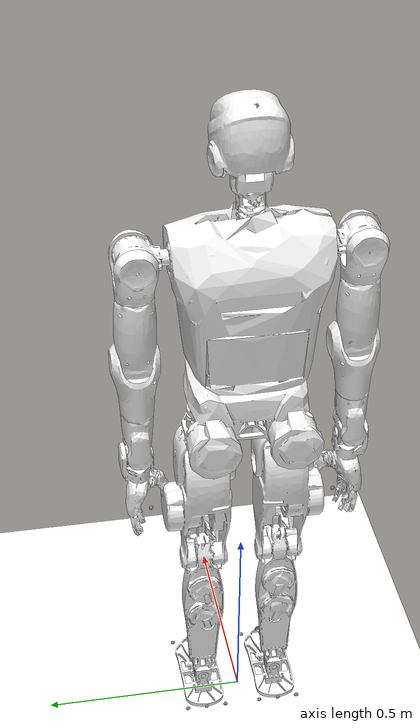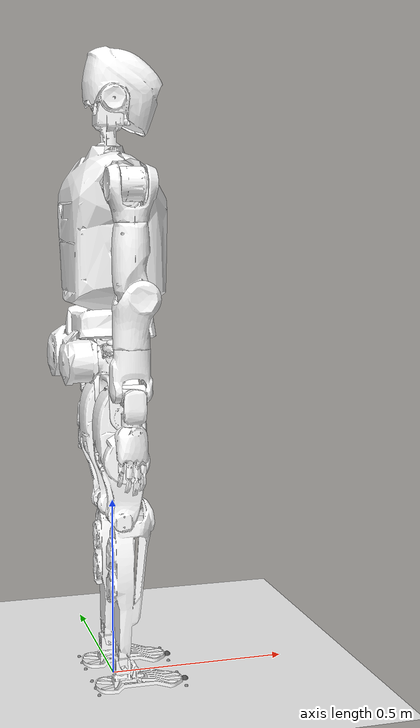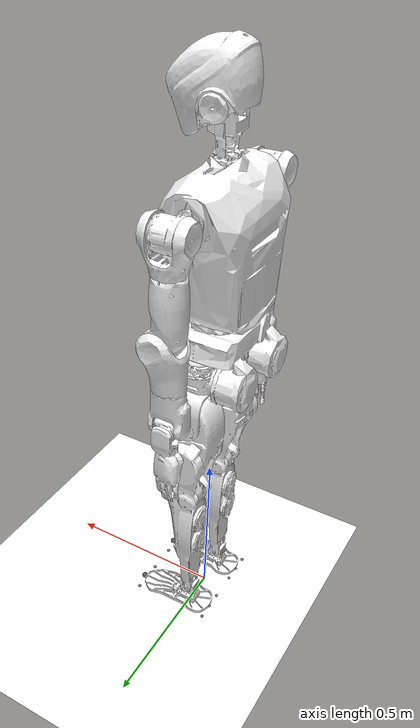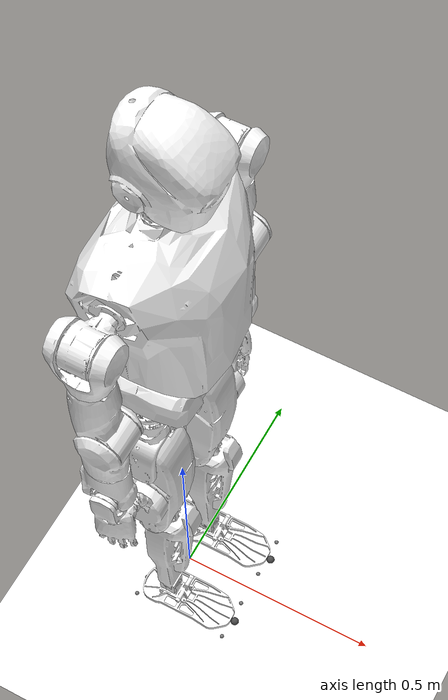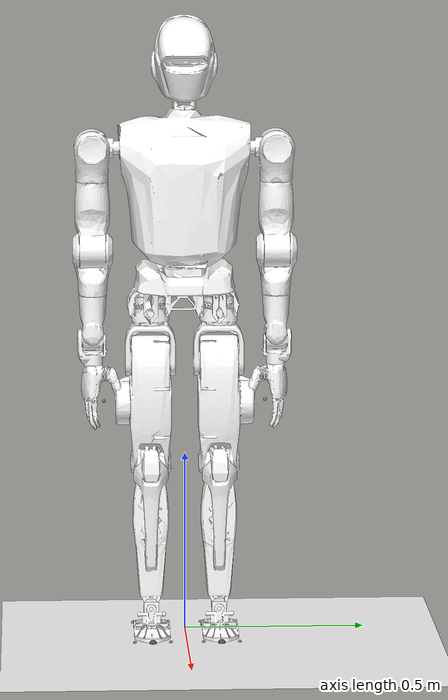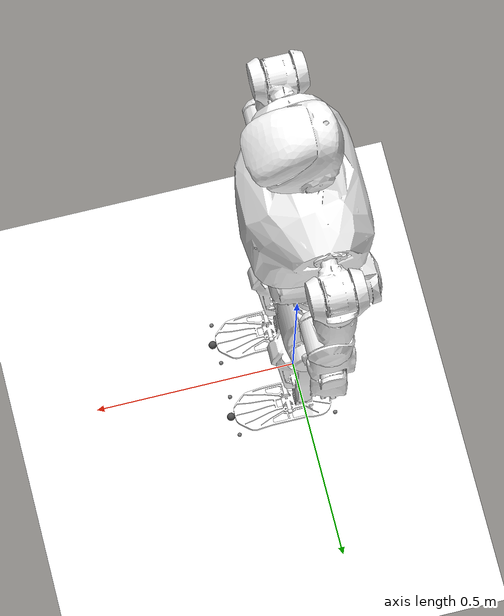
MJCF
<?xml version='1.0' encoding='utf-8'?>
<mujoco model="biped_s52">
  <compiler angle="radian" meshdir="meshes/"/>
  <size njmax="500" nconmax="100" />
  <visual>
    <headlight diffuse="0.6 0.6 0.6" ambient="0.1 0.1 0.1" specular="0.9 0.9 0.9"/>
    <rgba haze="0.15 0.25 0.35 1"/>
    <global azimuth="-140" elevation="-20" offwidth="2080" offheight="1170"/>
  </visual>
  <default>
    <joint limited="true" armature="0.05" damping="0.2" frictionloss="0.02"/>
    <motor ctrllimited="true" ctrlrange="-100 100"/>
    <equality solref="0.005 1"/>
    <default class="collision">
      <!-- User parameter for geoms is used to identify collision types -->
      <geom material="collision" contype="4" conaffinity="4" user="2" rgba="0.9 0.3 0.3 0.2"/>
      <default class="collision-left">
        <geom contype="1" conaffinity="2" rgba="0.3 0.9 0.3 0.2"/>
      </default>
      <default class="collision-right">
        <geom contype="2" conaffinity="1" rgba="0.3 0.3 0.9 0.2"/>
      </default>
    </default>
  </default>
  <asset>
    <!-- background & ground (same style as unitree_g1) -->
    <texture type="skybox" builtin="gradient" rgb1="1 1 1" rgb2="1 1 1" width="800" height="800"/>
    <texture type="2d" name="groundplane" builtin="checker" mark="edge" rgb1="1 1 1" rgb2="1 1 1" markrgb="0 0 0"
      width="300" height="300"/>
    <material name="groundplane" texture="groundplane" texuniform="true" texrepeat="5 5" reflectance="0"/>
    <texture type="skybox" builtin="gradient" rgb1=".4 .5 .6" rgb2="0 0 0" width="100" height="100"/>
    <texture builtin="flat" height="1278" mark="cross" markrgb="1 1 1" name="texgeom" random="0.01"
             rgb1="0.8 0.6 0.4" rgb2="0.8 0.6 0.4" type="cube" width="127"/>
    <texture name="texplane" builtin="checker" height="512" width="512" rgb1=".2 .3 .4" rgb2=".1 .15 .2" type="2d" />
    <material name="MatPlane" reflectance="0.5" shininess="0.01" specular="0.1" texrepeat="1 1"
              texture="texplane" texuniform="true" />

    <!-- keep original grid material if needed elsewhere -->
    <texture name="grid" type="2d" builtin="checker" rgb1=".1 .2 .3" rgb2=".2 .3 .4" width="300" height="300"/>
    <material name="grid" texture="grid" texrepeat="8 8" reflectance=".1"/>
    <material name="collision" rgba="0.1 0.5 0.9 0"/>
    <mesh name="torso" file="torso.STL"/>
    <mesh name="waist_yaw" file="waist_yaw.STL"/>
    <mesh name="l_leg_roll" file="l_leg_roll.STL"/>
    <mesh name="l_leg_yaw" file="l_leg_yaw.STL"/>
    <mesh name="l_leg_pitch" file="l_leg_pitch.STL"/>
    <mesh name="l_knee" file="l_knee.STL"/>
    <mesh name="l_foot_pitch" file="l_foot_pitch.STL"/>
    <mesh name="l_foot_roll" file="l_foot_roll.STL"/>
    <mesh name="r_leg_roll" file="r_leg_roll.STL"/>
    <mesh name="r_leg_yaw" file="r_leg_yaw.STL"/>
    <mesh name="r_leg_pitch" file="r_leg_pitch.STL"/>
    <mesh name="r_knee" file="r_knee.STL"/>
    <mesh name="r_foot_pitch" file="r_foot_pitch.STL"/>
    <mesh name="r_foot_roll" file="r_foot_roll.STL"/>
    <mesh name="l_arm_pitch" file="l_arm_pitch.STL"/>
    <mesh name="l_arm_roll" file="l_arm_roll.STL"/>
    <mesh name="l_arm_yaw" file="l_arm_yaw.STL"/>
    <mesh name="l_forearm" file="l_forearm.STL"/>
    <mesh name="l_hand_yaw" file="l_hand_yaw.STL"/>
    <mesh name="l_hand_roll" file="l_hand_roll.STL"/>
    <mesh name="l_hand_pitch" file="l_hand_pitch.STL"/>
    <mesh name="r_arm_pitch" file="r_arm_pitch.STL"/>
    <mesh name="r_arm_roll" file="r_arm_roll.STL"/>
    <mesh name="r_arm_yaw" file="r_arm_yaw.STL"/>
    <mesh name="r_forearm" file="r_forearm.STL"/>
    <mesh name="r_hand_yaw" file="r_hand_yaw.STL"/>
    <mesh name="r_hand_roll" file="r_hand_roll.STL"/>
    <mesh name="r_hand_pitch" file="r_hand_pitch.STL"/>
    <mesh name="head_yaw" file="head_yaw.STL"/>
    <mesh name="head_pitch" file="head_pitch.STL"/>
    <mesh name="head_camera" file="head_camera.STL"/>
  </asset>
  <worldbody>
    <!-- ground plane & light, same as unitree_g1 -->
    <geom name="floor" size="0 0 0.01" type="plane" material="groundplane" contype="1" conaffinity="0" priority="1"
          friction="0.6" condim="3"/>
    <light diffuse=".5 .5 .5" pos="-3 -3 5" dir="3 3 -5" castshadow="true"/>

    <body name="base_link" pos="0 0 0.968">
      <freejoint />
      <body name="site_left_shoulder" pos="-0.01 0.06 0.47" />
      <body name="site_right_shoulder" pos="-0.01 -0.06 0.47" />
      <body name="site_hips" pos="0.0 0.0 -0.04" />
      <site name="imu" pos="0 0 0" />
      <inertial pos="-0.0505121 1.42e-06 -0.01249" quat="0.658203 0.656028 0.26182 -0.260473" mass="6.53484" diaginertia="0.0840256 0.0507959 0.0496655"/>
      <geom type="mesh" contype="0" conaffinity="0" group="1" density="0" rgba="1 1 1 1" mesh="torso"/>
      <body name="leg_l1_link" pos="0 0.095075 -0.066">
        <inertial pos="-0.00558741 0.0001005 0.00069219" quat="0.0477337 0.697363 0.0616368 0.712466" mass="1.63859" diaginertia="0.00221408 0.00214492 0.00162067"/>
        <joint name="leg_l1_joint" pos="0 0 0" axis="1 0 0" range="-0.314159 0.663225" actuatorfrcrange="-180 180" damping="0.2"/>
        <geom type="mesh" contype="0" conaffinity="0" group="1" density="0" rgba="1 1 1 1" mesh="l_leg_roll"/>
        <body name="leg_l2_link">
          <inertial pos="0.00013508 -0.00098545 -0.0914989" quat="0.645636 0.76294 -0.0323984 -0.00519196" mass="0.705755" diaginertia="0.00324404 0.00220471 0.00182151"/>
          <joint name="leg_l2_joint" pos="0 0 0" axis="0 0 1" range="-0.872665 0.785398" actuatorfrcrange="-100 100" damping="0.2"/>
          <geom type="mesh" contype="0" conaffinity="0" group="1" density="0" rgba="1 1 1 1" mesh="l_leg_yaw"/>
          <body name="leg_l3_link" pos="0 0 -0.1437">
            <inertial pos="0.00306476 0.00954886 -0.0778944" quat="0.997489 0.0539565 -0.0233319 0.0395091" mass="5.93791" diaginertia="0.0520644 0.0496427 0.0155919"/>
            <joint name="leg_l3_joint" pos="0 0 0" axis="0 1 0" range="-2.00713 1.5708" actuatorfrcrange="-100 100" damping="0.2"/>
            <geom type="mesh" contype="0" conaffinity="0" group="1" density="0" rgba="1 1 1 1" mesh="l_leg_pitch"/>
            <body name="leg_l4_link" pos="0 0 -0.284">
              <inertial pos="0.00501956 -0.00014918 -0.165787" quat="0.999869 0.00326938 0.00635833 0.0145484" mass="4.02499" diaginertia="0.0460394 0.0455076 0.00355666"/>
              <joint name="leg_l4_joint" pos="0 0 0" axis="0 1 0" range="0 2.53073" actuatorfrcrange="-180 180" damping="0.2"/>
              <geom type="mesh" contype="0" conaffinity="0" group="1" density="0" rgba="1 1 1 1" mesh="l_knee"/>
              <body name="leg_l5_link" pos="0.002 0.0003 -0.416">
                <inertial pos="0 0 0" mass="0.07848" diaginertia="7.6e-05 7.6e-05 1.318e-05"/>
                <joint name="leg_l5_joint" pos="0 0 0" axis="0 1 0" range="-0.872665 0.349066" actuatorfrcrange="-36 36" damping="0.2"/>
                <geom type="mesh" contype="0" conaffinity="0" group="1" density="0" rgba="1 1 1 1" mesh="l_foot_pitch"/>
                <body name="leg_l6_link">
                  <site name="l_ft_frame" pos="0 0 0" size="0.02 0.02 0.02" rgba="1 1 1 1" type="box" group="1"/>
                  <inertial pos="0.0313741 -2.09873e-06 -0.0363103" quat="0.00921744 0.732055 -0.000966867 0.681183" mass="0.588057" diaginertia="0.00194243 0.00181349 0.000466838"/>
                  <joint name="leg_l6_joint" pos="0 0 0" axis="1 0 0" range="-0.261799 0.261799" actuatorfrcrange="-36 36" damping="0.2"/>
                  <geom type="mesh" contype="0" conaffinity="0" group="1" density="0" rgba="1 1 1 1" mesh="l_foot_roll"/>
                  <geom size="0.005" pos="0.17084 0.05 -0.0595"/>
                  <geom size="0.005" pos="-0.073164 0.05 -0.0595"/>
                  <geom size="0.005" pos="0.17084 -0.05 -0.0595"/>
                  <geom size="0.005" pos="-0.073164 -0.05 -0.0595"/>
                  <geom size="0.005" pos="0.17084 0 -0.0595"/>
                  <geom size="0.005" pos="-0.073164 0 -0.0595"/>

                  <!-- Front toe -->
                  <body name="toe_l6_front" pos="0.180 0.0 -0.06">
                    <inertial pos="0 0 0" mass="0.01" diaginertia="1e-6 1e-6 1e-6"/>
                    <geom type="sphere" size="0.01" rgba="0.3 0.3 0.3 1"   group="1"/> <!-- visual -->
                    <geom type="sphere" size="0.01" rgba="0.6 0.6 0.6 0.8" group="3" class="collision"/>
                  </body>

                </body>
              </body>
            </body>
          </body>
        </body>
      </body>
      <body name="leg_r1_link" pos="0 -0.095075 -0.066">
        <inertial pos="-0.00553677 -0.00034203 0.0007206" quat="0.210278 0.671618 0.183501 0.686324" mass="1.63861" diaginertia="0.00226768 0.00210495 0.00163213"/>
        <joint name="leg_r1_joint" pos="0 0 0" axis="1 0 0" range="-0.663225 0.314159" actuatorfrcrange="-180 180" damping="0.2"/>
        <geom type="mesh" contype="0" conaffinity="0" group="1" density="0" rgba="1 1 1 1" mesh="r_leg_roll"/>
        <body name="leg_r2_link">
          <inertial pos="-0.00013508 0.00098545 -0.0914989" quat="0.76294 0.645636 -0.00519196 -0.0323984" mass="0.705755" diaginertia="0.00324404 0.00220471 0.00182151"/>
          <joint name="leg_r2_joint" pos="0 0 0" axis="0 0 1" range="-0.785398 0.872665" actuatorfrcrange="-100 100" damping="0.2"/>
          <geom type="mesh" contype="0" conaffinity="0" group="1" density="0" rgba="1 1 1 1" mesh="r_leg_yaw"/>
          <body name="leg_r3_link" pos="0 0 -0.1437">
            <inertial pos="0.00305583 -0.0095594 -0.0778079" quat="0.997492 -0.0535717 -0.0233171 -0.0399453" mass="5.93792" diaginertia="0.0521008 0.0496673 0.0156037"/>
            <joint name="leg_r3_joint" pos="0 0 0" axis="0 1 0" range="-2.00713 1.5708" actuatorfrcrange="-100 100" damping="0.2"/>
            <geom type="mesh" contype="0" conaffinity="0" group="1" density="0" rgba="1 1 1 1" mesh="r_leg_pitch"/>
            <body name="leg_r4_link" pos="0 0 -0.284">
              <inertial pos="0.00501956 0.00014918 -0.165787" quat="0.999869 0.00326938 0.00635833 0.0145484" mass="4.02499" diaginertia="0.0460394 0.0455076 0.00355666"/>
              <joint name="leg_r4_joint" pos="0 0 0" axis="0 1 0" range="0 2.53073" actuatorfrcrange="-180 180" damping="0.2"/>
              <geom type="mesh" contype="0" conaffinity="0" group="1" density="0" rgba="1 1 1 1" mesh="r_knee"/>
              <body name="leg_r5_link" pos="0.002 -0.0003 -0.416">
                <inertial pos="0 0 0" mass="0.07848" diaginertia="7.6e-05 7.6e-05 1.318e-05"/>
                <joint name="leg_r5_joint" pos="0 0 0" axis="0 1 0" range="-0.872665 0.349066" actuatorfrcrange="-36 36" damping="0.2"/>
                <geom type="mesh" contype="0" conaffinity="0" group="1" density="0" rgba="1 1 1 1" mesh="r_foot_pitch"/>
                <body name="leg_r6_link">
                  <site name="r_ft_frame" pos="0 0 0" size="0.02 0.02 0.02" rgba="1 1 1 1" type="box" group="1"/>
                  <inertial pos="0.0313741 -2.09873e-06 -0.0363103" quat="0.00921744 0.732055 -0.000966867 0.681183" mass="0.588057" diaginertia="0.00194243 0.00181349 0.000466838"/>
                  <joint name="leg_r6_joint" pos="0 0 0" axis="1 0 0" range="-0.261799 0.261799" actuatorfrcrange="-36 36" damping="0.2"/>
                  <geom type="mesh" contype="0" conaffinity="0" group="1" density="0" rgba="1 1 1 1" mesh="r_foot_roll"/>
                  <geom size="0.005" pos="0.17084 0.05 -0.0595"/>
                  <geom size="0.005" pos="-0.073164 0.05 -0.0595"/>
                  <geom size="0.005" pos="0.17084 -0.05 -0.0595"/>
                  <geom size="0.005" pos="-0.073164 -0.05 -0.0595"/>
                  <geom size="0.005" pos="0.17084 0 -0.0595"/>
                  <geom size="0.005" pos="-0.073164 0 -0.0595"/>

                  <!-- Front toe -->
                  <body name="toe_r6_front" pos="0.180 0.0 -0.06">
                    <inertial pos="0 0 0" mass="0.01" diaginertia="1e-6 1e-6 1e-6"/>
                    <geom type="sphere" size="0.01" rgba="0.3 0.3 0.3 1"   group="1"/> <!-- visual -->
                    <geom type="sphere" size="0.01" rgba="0.6 0.6 0.6 0.8" group="3" class="collision"/>
                  </body>

                </body>
              </body>
            </body>
          </body>
        </body>
      </body>
      <body name="waist_yaw" pos="0 0 0.107">
        <inertial pos="0.00089444 -0.00069446 0.167783" quat="0.999931 0.00712897 -0.00930965 0.000280164" mass="18.0142" diaginertia="0.36264 0.278005 0.215855"/>
        <joint name="waist_yaw_joint" pos="0 0 0" axis="0 0 1" range="-2.0944 2.0944" actuatorfrcrange="-180 180"/>
        <geom type="mesh" contype="0" conaffinity="0" group="1" density="0" rgba="1 1 1 1" mesh="waist_yaw"/>
        <body name="zarm_l1_link" pos="-0.003 0.1737 0.2831">
          <inertial pos="0.00166796 0.072759 0.00012987" quat="0.695882 0.669852 0.192417 -0.173268" mass="0.916533" diaginertia="0.00127768 0.00123233 0.000868438"/>
          <joint name="zarm_l1_joint" pos="0 0 0" axis="0 1 0" range="-3.14159 1.5708" actuatorfrcrange="-100 100" damping="0.2"/>
          <geom type="mesh" contype="0" conaffinity="0" group="1" density="0" rgba="1 1 1 1" mesh="l_arm_pitch"/>
          <body name="zarm_l2_link" pos="0 0.081 0">
            <inertial pos="-0.00080932 6.91e-06 -0.04651" quat="0.694163 0.0595543 0.0820425 0.712643" mass="0.387674" diaginertia="0.00116219 0.000811619 0.000697303"/>
            <joint name="zarm_l2_joint" pos="0 0 0" axis="1 0 0" range="-0.349066 2.0944" actuatorfrcrange="-50 50" damping="0.2"/>
            <geom type="mesh" contype="0" conaffinity="0" group="1" density="0" rgba="1 1 1 1" mesh="l_arm_roll"/>
            <body name="zarm_l3_link" pos="0 0 -0.104">
              <inertial pos="0.00943019 0.00343988 -0.113045" quat="0.92785 0.0468244 -0.0512139 -0.366442" mass="1.77927" diaginertia="0.010086 0.0100487 0.00169393"/>
              <joint name="zarm_l3_joint" pos="0 0 0" axis="0 0 1" range="-1.5708 1.5708" actuatorfrcrange="-36 36" damping="0.2"/>
              <geom type="mesh" contype="0" conaffinity="0" group="1" density="0" rgba="1 1 1 1" mesh="l_arm_yaw"/>
              <body name="zarm_l4_link" pos="0.02 0 -0.1797">
                <inertial pos="-0.0182993 0.00087167 -0.0693662" quat="0.991505 -0.0310838 0.0736815 -0.102583" mass="0.585078" diaginertia="0.00146003 0.001242 0.000664628"/>
                <joint name="zarm_l4_joint" pos="0 0 0" axis="0 1 0" range="-2.61799 0" actuatorfrcrange="-50 50" damping="0.2"/>
                <geom type="mesh" contype="0" conaffinity="0" group="1" density="0" rgba="1 1 1 1" mesh="l_forearm"/>
                <body name="zarm_l5_link" pos="-0.02 0 -0.1195">
                  <inertial pos="-0.0102609 1.322e-05 -0.0608394" quat="0.711057 0.119895 0.132947 0.679962" mass="0.6868" diaginertia="0.00122595 0.00090114 0.000635553"/>
                  <joint name="zarm_l5_joint" pos="0 0 0" axis="0 0 1" range="-1.5708 1.5708" actuatorfrcrange="-12 12" damping="0.2"/>
                  <geom type="mesh" contype="0" conaffinity="0" group="1" density="0" rgba="1 1 1 1" mesh="l_hand_yaw"/>
                  <body name="zarm_l6_link" pos="0 0 -0.114">
                    <inertial pos="0.00019162 0.00886363 -0.0174775" quat="0.756715 0.48339 0.157273 0.411075" mass="0.393872" diaginertia="0.000268168 0.000238527 7.92854e-05"/>
                    <joint name="zarm_l6_joint" pos="0 0 0" axis="1 0 0" range="-1.309 0.698132" actuatorfrcrange="-12 12" damping="0.2"/>
                    <geom type="mesh" contype="0" conaffinity="0" group="1" density="0" rgba="1 1 1 1" mesh="l_hand_roll"/>
                    <body name="zarm_l7_link" pos="-0.0002 0 -0.021">
                      <inertial pos="0.00326125 0.0057341 -0.12235" quat="0.992329 -0.0373739 -0.0133262 0.117081" mass="0.615901" diaginertia="0.00162457 0.00155873 0.000175502"/>
                      <joint name="zarm_l7_joint" pos="0 0 0" axis="0 1 0" range="-0.698132 0.698132" actuatorfrcrange="-12 12" damping="0.2"/>
                      <geom type="mesh" contype="0" conaffinity="0" group="1" density="0" rgba="1 1 1 1" mesh="l_hand_pitch"/>
                      <geom size="0.005" pos="0 -0.03 -0.17"/>
                    </body>
                  </body>
                </body>
              </body>
            </body>
          </body>
        </body>
        <body name="zarm_r1_link" pos="-0.003 -0.1737 0.2831">
          <inertial pos="0.00166796 -0.072759 0.00012987" quat="0.695882 0.669852 0.192417 -0.173268" mass="0.920628" diaginertia="0.00127768 0.00123233 0.000868438"/>
          <joint name="zarm_r1_joint" pos="0 0 0" axis="0 1 0" range="-3.14159 1.5708" actuatorfrcrange="-100 100" damping="0.2"/>
          <geom type="mesh" contype="0" conaffinity="0" group="1" density="0" rgba="1 1 1 1" mesh="r_arm_pitch"/>
          <body name="zarm_r2_link" pos="0 -0.081 0">
            <inertial pos="-0.00080932 -6.91e-06 -0.04651" quat="0.694163 0.0595543 0.0820425 0.712643" mass="0.387681" diaginertia="0.00116219 0.000811619 0.000697303"/>
            <joint name="zarm_r2_joint" pos="0 0 0" axis="1 0 0" range="-2.0944 0.349066" actuatorfrcrange="-50 50" damping="0.2"/>
            <geom type="mesh" contype="0" conaffinity="0" group="1" density="0" rgba="1 1 1 1" mesh="r_arm_roll"/>
            <body name="zarm_r3_link" pos="0 0 -0.104">
              <inertial pos="0.00933929 -0.00288519 -0.113241" quat="0.996391 -0.0246511 -0.0639125 0.0501254" mass="1.77969" diaginertia="0.00926968 0.00912764 0.00103075"/>
              <joint name="zarm_r3_joint" pos="0 0 0" axis="0 0 1" range="-1.5708 1.5708" actuatorfrcrange="-36 36" damping="0.2"/>
              <geom type="mesh" contype="0" conaffinity="0" group="1" density="0" rgba="1 1 1 1" mesh="r_arm_yaw"/>
              <body name="zarm_r4_link" pos="0.02 0 -0.1797">
                <inertial pos="-0.0182979 -0.00087299 -0.0693649" quat="0.99163 0.0299677 0.0722311 0.102736" mass="0.585146" diaginertia="0.00140552 0.0011869 0.000594663"/>
                <joint name="zarm_r4_joint" pos="0 0 0" axis="0 1 0" range="-2.61799 0" actuatorfrcrange="-50 50" damping="0.2"/>
                <geom type="mesh" contype="0" conaffinity="0" group="1" density="0" rgba="1 1 1 1" mesh="r_forearm"/>
                <body name="zarm_r5_link" pos="-0.02 0 -0.1195">
                  <inertial pos="-0.0102346 -2.917e-05 -0.0607864" quat="0.584549 0.160661 0.055607 0.793346" mass="0.684739" diaginertia="0.00121648 0.000789663 0.000572562"/>
                  <joint name="zarm_r5_joint" pos="0 0 0" axis="0 0 1" range="-1.5708 1.5708" actuatorfrcrange="-12 12" damping="0.2"/>
                  <geom type="mesh" contype="0" conaffinity="0" group="1" density="0" rgba="1 1 1 1" mesh="r_hand_yaw"/>
                  <body name="zarm_r6_link" pos="0 0 -0.114">
                    <inertial pos="0.00019291 -0.0089543 -0.0174647" quat="0.487893 0.780968 -0.344575 -0.18253" mass="0.392475" diaginertia="0.00013457 0.00013457 0.00013457"/>
                    <joint name="zarm_r6_joint" pos="0 0 0" axis="1 0 0" range="-0.698132 1.309" actuatorfrcrange="-12 12" damping="0.2"/>
                    <geom type="mesh" contype="0" conaffinity="0" group="1" density="0" rgba="1 1 1 1" mesh="r_hand_roll"/>
                    <body name="zarm_r7_link" pos="0 0 -0.022284">
                      <inertial pos="0.00330557 -0.00559255 -0.122138" quat="0.992329 0.0373737 -0.0133254 -0.117087" mass="0.616146" diaginertia="0.00162458 0.00155874 0.000175497"/>
                      <joint name="zarm_r7_joint" pos="0 0 0" axis="0 1 0" range="-0.698132 0.698132" actuatorfrcrange="-12 12" damping="0.2"/>
                      <geom type="mesh" contype="0" conaffinity="0" group="1" density="0" rgba="1 1 1 1" mesh="r_hand_pitch"/>
                      <geom size="0.005" pos="0 0.03 -0.17"/>
                    </body>
                  </body>
                </body>
              </body>
            </body>
          </body>
        </body>
        <body name="zhead_1_link" pos="-0.003 0 0.3715">
          <inertial pos="0.00031003 -0.00324665 0.0949507" mass="0.871178" diaginertia="0.00204799 0.00196073 0.0006154"/>
          <joint name="zhead_1_joint" pos="0 0 0" axis="0 0 1" range="-1.5708 1.5708" actuatorfrcrange="-1.5 1.5" damping="0.2"/>
          <geom type="mesh" contype="0" conaffinity="0" group="1" density="0" rgba="1 1 1 1" mesh="head_yaw"/>
          <body name="zhead_2_link" pos="0 0 0.137954">
            <inertial pos="0.0240235 0.00132797 0.0321445" quat="-0.0263937 0.707134 0.0289261 0.705994" mass="0.853529" diaginertia="0.00535415 0.00521849 0.00396566"/>
            <joint name="zhead_2_joint" pos="0 0 0" axis="0 1 0" range="-0.349066 0.785398" actuatorfrcrange="-12 12" damping="0.2"/>
            <geom type="mesh" contype="0" conaffinity="0" group="1" density="0" rgba="1 1 1 1" mesh="head_pitch"/>
            <geom pos="0.119717 0.0237515 0.0262044" quat="0.971311 0 0.237812 0" type="mesh" contype="0" conaffinity="0" group="1" density="0" rgba="1 1 1 1" mesh="head_camera"/>
          </body>
        </body>
      </body>
    </body>
  </worldbody>
  <actuator>
    <motor gear="1" joint="leg_l1_joint" name="leg_l1_joint_motor" ctrllimited="true" ctrlrange="-180 180" />
    <motor gear="1" joint="leg_l2_joint" name="leg_l2_joint_motor" ctrllimited="true" ctrlrange="-100 100" />
    <motor gear="1" joint="leg_l3_joint" name="leg_l3_joint_motor" ctrllimited="true" ctrlrange="-100 100" />
    <motor gear="1" joint="leg_l4_joint" name="leg_l4_joint_motor" ctrllimited="true" ctrlrange="-180 180" />
    <motor gear="1" joint="leg_l5_joint" name="leg_l5_joint_motor" ctrllimited="true" ctrlrange="-36 36" />
    <motor gear="1" joint="leg_l6_joint" name="leg_l6_joint_motor" ctrllimited="true" ctrlrange="-36 36" />
    <motor gear="1" joint="leg_r1_joint" name="leg_r1_joint_motor" ctrllimited="true" ctrlrange="-180 180" />
    <motor gear="1" joint="leg_r2_joint" name="leg_r2_joint_motor" ctrllimited="true" ctrlrange="-100 100" />
    <motor gear="1" joint="leg_r3_joint" name="leg_r3_joint_motor" ctrllimited="true" ctrlrange="-100 100" />
    <motor gear="1" joint="leg_r4_joint" name="leg_r4_joint_motor" ctrllimited="true" ctrlrange="-180 180" />
    <motor gear="1" joint="leg_r5_joint" name="leg_r5_joint_motor" ctrllimited="true" ctrlrange="-36 36" />
    <motor gear="1" joint="leg_r6_joint" name="leg_r6_joint_motor" ctrllimited="true" ctrlrange="-36 36" />
    <motor gear="1" joint="waist_yaw_joint" name="waist_yaw_joint_motor" ctrllimited="true" ctrlrange="-36 36" />
    <motor gear="1" joint="zarm_l1_joint" name="zarm_l1_joint_motor" ctrllimited="true" ctrlrange="-100 100" />
    <motor gear="1" joint="zarm_l2_joint" name="zarm_l2_joint_motor" ctrllimited="true" ctrlrange="-50 50" />
    <motor gear="1" joint="zarm_l3_joint" name="zarm_l3_joint_motor" ctrllimited="true" ctrlrange="-39 39" />
    <motor gear="1" joint="zarm_l4_joint" name="zarm_l4_joint_motor" ctrllimited="true" ctrlrange="-50 50" />
    <motor gear="1" joint="zarm_l5_joint" name="zarm_l5_joint_motor" ctrllimited="true" ctrlrange="-12 12" />
    <motor gear="1" joint="zarm_l6_joint" name="zarm_l6_joint_motor" ctrllimited="true" ctrlrange="-12 12" />
    <motor gear="1" joint="zarm_l7_joint" name="zarm_l7_joint_motor" ctrllimited="true" ctrlrange="-12 12" />
    <motor gear="1" joint="zarm_r1_joint" name="zarm_r1_joint_motor" ctrllimited="true" ctrlrange="-100 100" />
    <motor gear="1" joint="zarm_r2_joint" name="zarm_r2_joint_motor" ctrllimited="true" ctrlrange="-50 50" />
    <motor gear="1" joint="zarm_r3_joint" name="zarm_r3_joint_motor" ctrllimited="true" ctrlrange="-39 39" />
    <motor gear="1" joint="zarm_r4_joint" name="zarm_r4_joint_motor" ctrllimited="true" ctrlrange="-50 50" />
    <motor gear="1" joint="zarm_r5_joint" name="zarm_r5_joint_motor" ctrllimited="true" ctrlrange="-12 12" />
    <motor gear="1" joint="zarm_r6_joint" name="zarm_r6_joint_motor" ctrllimited="true" ctrlrange="-12 12" />
    <motor gear="1" joint="zarm_r7_joint" name="zarm_r7_joint_motor" ctrllimited="true" ctrlrange="-12 12" />
    <motor gear="1" joint="zhead_1_joint" name="zhead_1_joint_motor" ctrllimited="true" ctrlrange="-12 12" />
    <motor gear="1" joint="zhead_2_joint" name="zhead_2_joint_motor" ctrllimited="true" ctrlrange="-12 12" />
  </actuator>
  <sensor>
    <framequat     name='orientation' objtype='site' objname='imu'/>
    <framepos     name='position' objtype='site' objname='imu'/>
    <gyro          name='angular-velocity'    site='imu' />
    <velocimeter   name='linear-velocity'     site='imu' />
    <accelerometer name='linear-acceleration' site='imu' />
    <magnetometer  name='magnetometer'        site='imu'/>

    <accelerometer name="BodyAcc" site="imu"/>
    <velocimeter name="BodyVel" site="imu"/>
    <gyro name="BodyGyro" site="imu"/>
    <framepos name="BodyPos" objtype="site" objname="imu"/>
    <framequat name="BodyQuat" objtype="site" objname="imu"/>

    <force name="l_force" site="l_ft_frame"/>
    <torque name="l_torque" site="l_ft_frame"/>
    <force name="r_force" site="r_ft_frame"/>
    <torque name="r_torque" site="r_ft_frame"/>
    <jointpos name="leg_l1_joint_pos" joint="leg_l1_joint" />
    <jointpos name="leg_l2_joint_pos" joint="leg_l2_joint" />
    <jointpos name="leg_l3_joint_pos" joint="leg_l3_joint" />
    <jointpos name="leg_l4_joint_pos" joint="leg_l4_joint" />
    <jointpos name="leg_l5_joint_pos" joint="leg_l5_joint" />
    <jointpos name="leg_l6_joint_pos" joint="leg_l6_joint" />
    <jointpos name="leg_r1_joint_pos" joint="leg_r1_joint" />
    <jointpos name="leg_r2_joint_pos" joint="leg_r2_joint" />
    <jointpos name="leg_r3_joint_pos" joint="leg_r3_joint" />
    <jointpos name="leg_r4_joint_pos" joint="leg_r4_joint" />
    <jointpos name="leg_r5_joint_pos" joint="leg_r5_joint" />
    <jointpos name="leg_r6_joint_pos" joint="leg_r6_joint" />
    <jointpos name="waist_yaw_joint_pos" joint="waist_yaw_joint" />
    <jointpos name="zarm_l1_joint_pos" joint="zarm_l1_joint" />
    <jointpos name="zarm_l2_joint_pos" joint="zarm_l2_joint" />
    <jointpos name="zarm_l3_joint_pos" joint="zarm_l3_joint" />
    <jointpos name="zarm_l4_joint_pos" joint="zarm_l4_joint" />
    <jointpos name="zarm_l5_joint_pos" joint="zarm_l5_joint" />
    <jointpos name="zarm_l6_joint_pos" joint="zarm_l6_joint" />
    <jointpos name="zarm_l7_joint_pos" joint="zarm_l7_joint" />
    <jointpos name="zarm_r1_joint_pos" joint="zarm_r1_joint" />
    <jointpos name="zarm_r2_joint_pos" joint="zarm_r2_joint" />
    <jointpos name="zarm_r3_joint_pos" joint="zarm_r3_joint" />
    <jointpos name="zarm_r4_joint_pos" joint="zarm_r4_joint" />
    <jointpos name="zarm_r5_joint_pos" joint="zarm_r5_joint" />
    <jointpos name="zarm_r6_joint_pos" joint="zarm_r6_joint" />
    <jointpos name="zarm_r7_joint_pos" joint="zarm_r7_joint" />
    <jointpos name="zhead_1_joint_pos" joint="zhead_1_joint" />
    <jointpos name="zhead_2_joint_pos" joint="zhead_2_joint" />
    <jointvel name="leg_l1_joint_vel" joint="leg_l1_joint" />
    <jointvel name="leg_l2_joint_vel" joint="leg_l2_joint" />
    <jointvel name="leg_l3_joint_vel" joint="leg_l3_joint" />
    <jointvel name="leg_l4_joint_vel" joint="leg_l4_joint" />
    <jointvel name="leg_l5_joint_vel" joint="leg_l5_joint" />
    <jointvel name="leg_l6_joint_vel" joint="leg_l6_joint" />
    <jointvel name="leg_r1_joint_vel" joint="leg_r1_joint" />
    <jointvel name="leg_r2_joint_vel" joint="leg_r2_joint" />
    <jointvel name="leg_r3_joint_vel" joint="leg_r3_joint" />
    <jointvel name="leg_r4_joint_vel" joint="leg_r4_joint" />
    <jointvel name="leg_r5_joint_vel" joint="leg_r5_joint" />
    <jointvel name="leg_r6_joint_vel" joint="leg_r6_joint" />
    <jointvel name="waist_yaw_joint_vel" joint="waist_yaw_joint" />
    <jointvel name="zarm_l1_joint_vel" joint="zarm_l1_joint" />
    <jointvel name="zarm_l2_joint_vel" joint="zarm_l2_joint" />
    <jointvel name="zarm_l3_joint_vel" joint="zarm_l3_joint" />
    <jointvel name="zarm_l4_joint_vel" joint="zarm_l4_joint" />
    <jointvel name="zarm_l5_joint_vel" joint="zarm_l5_joint" />
    <jointvel name="zarm_l6_joint_vel" joint="zarm_l6_joint" />
    <jointvel name="zarm_l7_joint_vel" joint="zarm_l7_joint" />
    <jointvel name="zarm_r1_joint_vel" joint="zarm_r1_joint" />
    <jointvel name="zarm_r2_joint_vel" joint="zarm_r2_joint" />
    <jointvel name="zarm_r3_joint_vel" joint="zarm_r3_joint" />
    <jointvel name="zarm_r4_joint_vel" joint="zarm_r4_joint" />
    <jointvel name="zarm_r5_joint_vel" joint="zarm_r5_joint" />
    <jointvel name="zarm_r6_joint_vel" joint="zarm_r6_joint" />
    <jointvel name="zarm_r7_joint_vel" joint="zarm_r7_joint" />
    <jointvel name="zhead_1_joint_vel" joint="zhead_1_joint" />
    <jointvel name="zhead_2_joint_vel" joint="zhead_2_joint" />
  </sensor>

  <keyframe>
    <key name="home"
      qpos="0 0 1.8
        1.0 0 0 0
        0 0 0 0 0 0 0 0 0 0 0 0
        0
        0 0 0 0 0 0 0 0 0 0 0 0 0 0
        0 0"/>
  </keyframe>

</mujoco>
